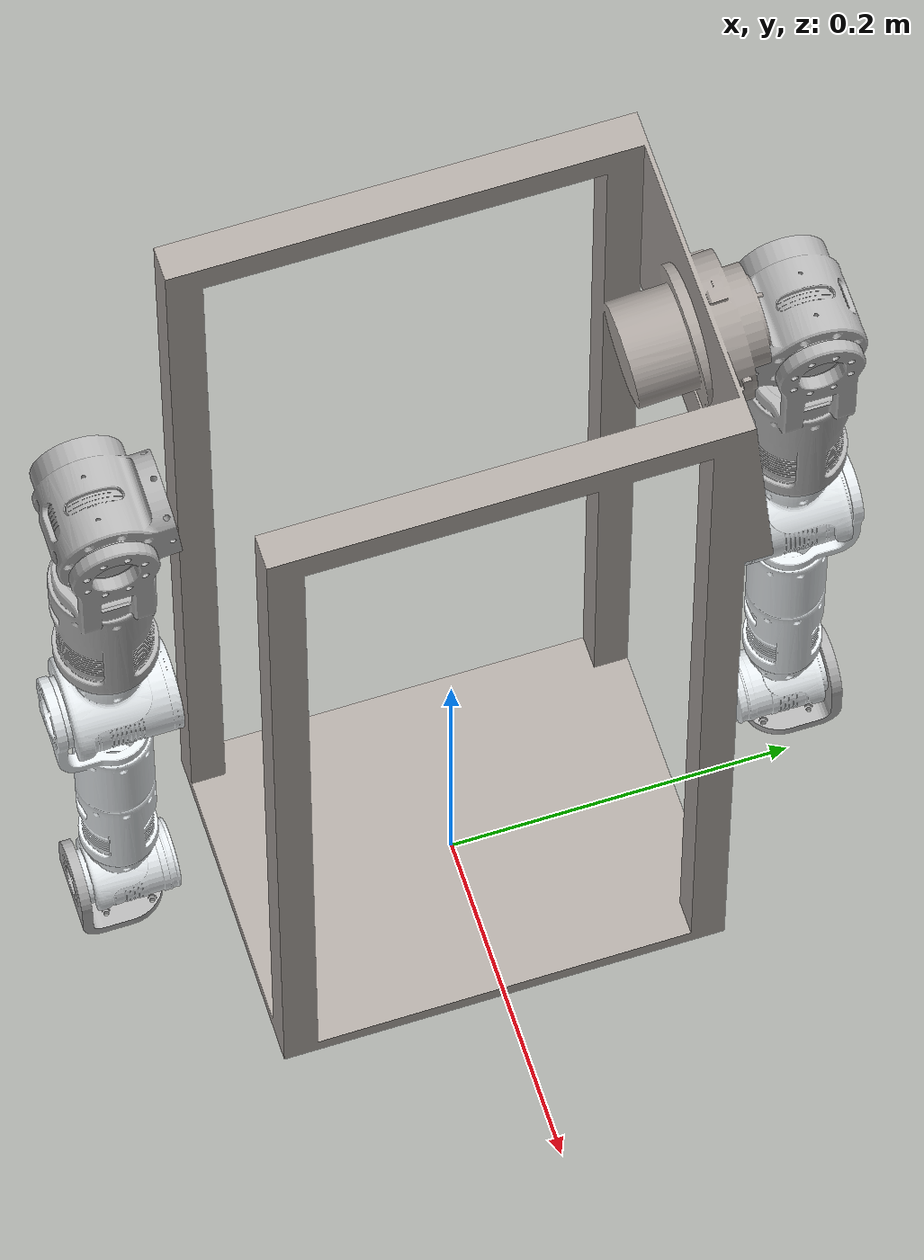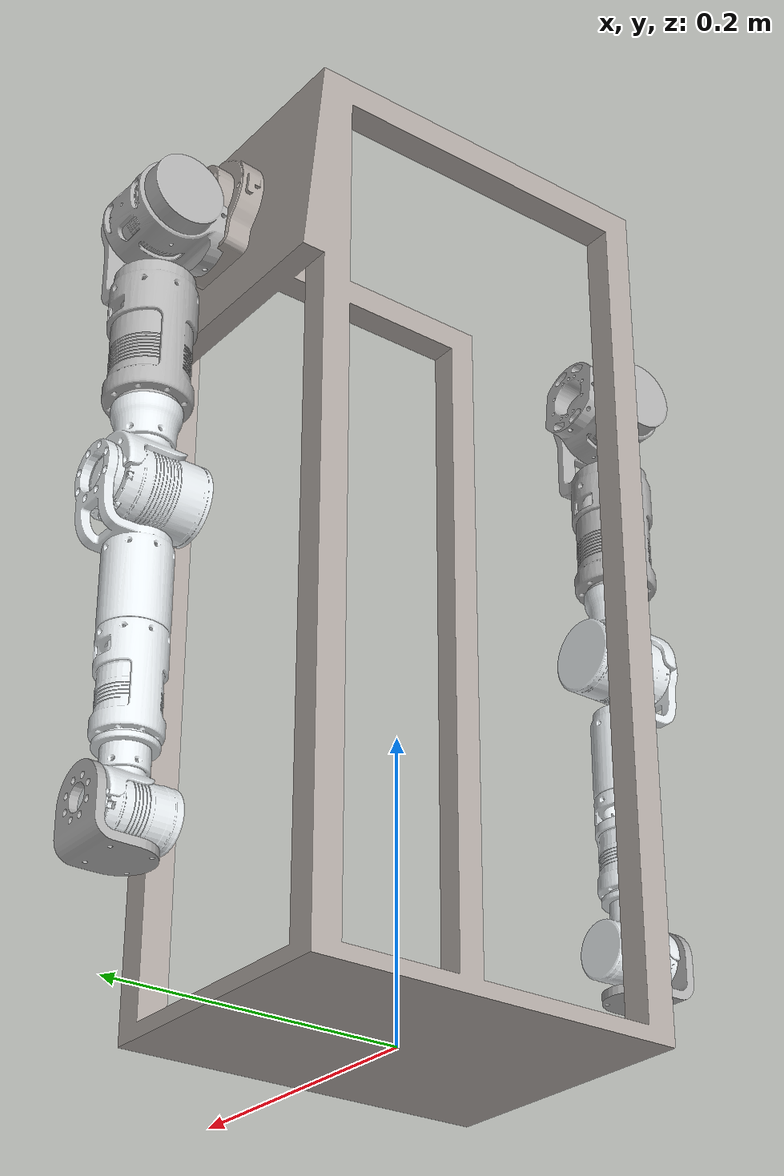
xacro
<?xml version="1.0"?>
<robot xmlns:xacro="http://www.ros.org/wiki/xacro" name="eyou_arm">
    <xacro:arg name="initial_positions_file" default="initial_positions.yaml" />

    <!-- Import eyou_arm urdf file -->
    <xacro:include filename="$(find eyou_ros2_control)/urdf/eyou_motor.urdf" />

    <!-- Import control_xacro -->
    <xacro:include filename="eyou_arm.ros2_control.xacro" />

    <xacro:eyou_arm_ros2_control name="FakeSystem" initial_positions_file="$(arg initial_positions_file)"/>

</robot>

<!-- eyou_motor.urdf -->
<robot
  name="eyou_arm">
  <link
    name="base_link">
    <inertial>
      <origin
        xyz="-1.11022302462516E-16 1.38777878078145E-16 0.469182869455848"
        rpy="0 0 0" />
      <mass
        value="4.58407761793697" />
      <inertia
        ixx="0.035026270933699"
        ixy="8.72490192900531E-11"
        ixz="-1.44759304418113E-18"
        iyy="0.0417863795649787"
        iyz="-7.29742718698457E-18"
        izz="0.011481351070146" />
    </inertial>
    <visual>
      <origin
        xyz="0 0 0"
        rpy="0 0 0" />
      <geometry>
        <mesh
          filename="package://eyou_description/meshes/base_link.STL" />
      </geometry>
      <material
        name="">
        <color
          rgba="0.686274509803922 0.658823529411765 0.63921568627451 1" />
      </material>
    </visual>
    <collision>
      <origin
        xyz="0 0 0"
        rpy="0 0 0" />
      <geometry>
        <mesh
          filename="package://eyou_description/meshes/base_link.STL" />
      </geometry>
    </collision>
  </link>
  <link
    name="link1">
    <inertial>
      <origin
        xyz="-0.00616208879294661 5.93612729388182E-08 0.0349460598059361"
        rpy="0 0 0" />
      <mass
        value="0.529497389335452" />
      <inertia
        ixx="0.000212324556474794"
        ixy="4.78501618110663E-10"
        ixz="-2.41724008448851E-06"
        iyy="0.000266190944788909"
        iyz="7.63896352721843E-11"
        izz="0.000255986765145615" />
    </inertial>
    <visual>
      <origin
        xyz="0 0 0"
        rpy="0 0 0" />
      <geometry>
        <mesh
          filename="package://eyou_description/meshes/link1.STL" />
      </geometry>
      <material
        name="">
        <color
          rgba="0.698039215686274 0.698039215686274 0.698039215686274 1" />
      </material>
    </visual>
    <collision>
      <origin
        xyz="0 0 0"
        rpy="0 0 0" />
      <geometry>
        <mesh
          filename="package://eyou_description/meshes/link1.STL" />
      </geometry>
    </collision>
  </link>
  <joint
    name="joint1"
    type="revolute">
    <origin
      xyz="0 0.15558 0.52181"
      rpy="-1.6606 0 0" />
    <parent
      link="base_link" />
    <child
      link="link1" />
    <axis
      xyz="0 0 1" />
    <limit
      lower="-3.14"
      upper="3.14"
      effort="10"
      velocity="10" />
  </joint>
  <link
    name="link2">
    <inertial>
      <origin
        xyz="-0.100980933411647 -5.28799155852244E-09 -0.0232813958693823"
        rpy="0 0 0" />
      <mass
        value="0.566804554005846" />
      <inertia
        ixx="0.000240973522730252"
        ixy="5.91194405737918E-12"
        ixz="-3.5179267638491E-05"
        iyy="0.000395824967050118"
        iyz="-4.82599101387467E-10"
        izz="0.000373860263464783" />
    </inertial>
    <visual>
      <origin
        xyz="0 0 0"
        rpy="0 0 0" />
      <geometry>
        <mesh
          filename="package://eyou_description/meshes/link2.STL" />
      </geometry>
      <material
        name="">
        <color
          rgba="0.698039215686274 0.698039215686274 0.698039215686274 1" />
      </material>
    </visual>
    <collision>
      <origin
        xyz="0 0 0"
        rpy="0 0 0" />
      <geometry>
        <mesh
          filename="package://eyou_description/meshes/link2.STL" />
      </geometry>
    </collision>
  </link>
  <joint
    name="joint2"
    type="revolute">
    <origin
      xyz="0.025999 0 0.0375"
      rpy="-1.5708 0.089758 -1.5708" />
    <parent
      link="link1" />
    <child
      link="link2" />
    <axis
      xyz="0 0 1" />
    <limit
      lower="-3.14"
      upper="3.14"
      effort="10"
      velocity="10" />
  </joint>
  <link
    name="link3">
    <inertial>
      <origin
        xyz="-3.26358497448886E-08 0.00357308588736699 0.0513274498338813"
        rpy="0 0 0" />
      <mass
        value="0.481708259704281" />
      <inertia
        ixx="0.000207537636321285"
        ixy="-3.50979044988331E-10"
        ixz="1.63534113028137E-10"
        iyy="0.00015599988287561"
        iyz="2.41690545773794E-06"
        izz="0.000219262186911974" />
    </inertial>
    <visual>
      <origin
        xyz="0 0 0"
        rpy="0 0 0" />
      <geometry>
        <mesh
          filename="package://eyou_description/meshes/link3.STL" />
      </geometry>
      <material
        name="">
        <color
          rgba="0.898039215686275 0.917647058823529 0.929411764705882 1" />
      </material>
    </visual>
    <collision>
      <origin
        xyz="0 0 0"
        rpy="0 0 0" />
      <geometry>
        <mesh
          filename="package://eyou_description/meshes/link3.STL" />
      </geometry>
    </collision>
  </link>
  <joint
    name="joint3"
    type="revolute">
    <origin
      xyz="-0.1505 0 -0.026"
      rpy="0 -1.5708 0" />
    <parent
      link="link2" />
    <child
      link="link3" />
    <axis
      xyz="0 0 1" />
    <limit
      lower="-3.14"
      upper="3.14"
      effort="10"
      velocity="10" />
  </joint>
  <link
    name="link4">
    <inertial>
      <origin
        xyz="3.57473034229283E-08 0.115010193588145 -0.0269265503493482"
        rpy="0 0 0" />
      <mass
        value="0.329838563871613" />
      <inertia
        ixx="0.00014817696579662"
        ixy="3.10151365528983E-10"
        ixz="6.92426965976863E-09"
        iyy="9.63331293352158E-05"
        iyz="1.11021931389748E-05"
        izz="0.000144485798243393" />
    </inertial>
    <visual>
      <origin
        xyz="0 0 0"
        rpy="0 0 0" />
      <geometry>
        <mesh
          filename="package://eyou_description/meshes/link4.STL" />
      </geometry>
      <material
        name="">
        <color
          rgba="0.898039215686275 0.917647058823529 0.929411764705882 1" />
      </material>
    </visual>
    <collision>
      <origin
        xyz="0 0 0"
        rpy="0 0 0" />
      <geometry>
        <mesh
          filename="package://eyou_description/meshes/link4.STL" />
      </geometry>
    </collision>
  </link>
  <joint
    name="joint4"
    type="revolute">
    <origin
      xyz="0 -0.028999 0.0575"
      rpy="1.5708 0 0" />
    <parent
      link="link3" />
    <child
      link="link4" />
    <axis
      xyz="0 0 1" />
    <limit
      lower="-3.14"
      upper="3.14"
      effort="10"
      velocity="10" />
  </joint>
  <link
    name="link5">
    <inertial>
      <origin
        xyz="1.66599088510799E-07 0.00406173056683598 0.0366311644711939"
        rpy="0 0 0" />
      <mass
        value="0.228601823800022" />
      <inertia
        ixx="6.25397849311352E-05"
        ixy="-4.33257152480105E-10"
        ixz="-7.78869976653566E-09"
        iyy="4.29204656172376E-05"
        iyz="5.29791859525774E-07"
        izz="6.5381418031852E-05" />
    </inertial>
    <visual>
      <origin
        xyz="0 0 0"
        rpy="0 0 0" />
      <geometry>
        <mesh
          filename="package://eyou_description/meshes/link5.STL" />
      </geometry>
      <material
        name="">
        <color
          rgba="0.898039215686275 0.917647058823529 0.929411764705882 1" />
      </material>
    </visual>
    <collision>
      <origin
        xyz="0 0 0"
        rpy="0 0 0" />
      <geometry>
        <mesh
          filename="package://eyou_description/meshes/link5.STL" />
      </geometry>
    </collision>
  </link>
  <joint
    name="joint5"
    type="revolute">
    <origin
      xyz="0 0.1708 -0.029"
      rpy="-1.5708 0 0" />
    <parent
      link="link4" />
    <child
      link="link5" />
    <axis
      xyz="0 0 1" />
    <limit
      lower="-3.14"
      upper="3.14"
      effort="10"
      velocity="10" />
  </joint>
  <link
    name="link6">
    <inertial>
      <origin
        xyz="1.29556088079852E-12 0.0163010424836187 -0.00947928557125444"
        rpy="0 0 0" />
      <mass
        value="0.0598755010407636" />
      <inertia
        ixx="2.60762300701253E-05"
        ixy="-1.44091435352681E-16"
        ixz="-3.14217235279124E-16"
        iyy="2.2700377312818E-05"
        iyz="7.94649714445054E-06"
        izz="2.2741529985641E-05" />
    </inertial>
    <visual>
      <origin
        xyz="0 0 0"
        rpy="0 0 0" />
      <geometry>
        <mesh
          filename="package://eyou_description/meshes/link6.STL" />
      </geometry>
      <material
        name="">
        <color
          rgba="0.698039215686274 0.698039215686274 0.698039215686274 1" />
      </material>
    </visual>
    <collision>
      <origin
        xyz="0 0 0"
        rpy="0 0 0" />
      <geometry>
        <mesh
          filename="package://eyou_description/meshes/link6.STL" />
      </geometry>
    </collision>
  </link>
  <joint
    name="joint6"
    type="revolute">
    <origin
      xyz="0 -0.0233 0.041"
      rpy="1.5708 0 0" />
    <parent
      link="link5" />
    <child
      link="link6" />
    <axis
      xyz="0 0 1" />
    <limit
      lower="-3.14"
      upper="3.14"
      effort="10"
      velocity="10" />
  </joint>
  <link
    name="link7">
    <inertial>
      <origin
        xyz="-0.00616208932690475 5.46574556448132E-08 0.0349460424190002"
        rpy="0 0 0" />
      <mass
        value="0.52949738018355" />
      <inertia
        ixx="0.000212324568733185"
        ixy="5.47569772954262E-10"
        ixz="-2.41704489808493E-06"
        iyy="0.000266190876951229"
        iyz="-1.12432350789801E-10"
        izz="0.000255986839862974" />
    </inertial>
    <visual>
      <origin
        xyz="0 0 0"
        rpy="0 0 0" />
      <geometry>
        <mesh
          filename="package://eyou_description/meshes/link7.STL" />
      </geometry>
      <material
        name="">
        <color
          rgba="0.698039215686274 0.698039215686274 0.698039215686274 1" />
      </material>
    </visual>
    <collision>
      <origin
        xyz="0 0 0"
        rpy="0 0 0" />
      <geometry>
        <mesh
          filename="package://eyou_description/meshes/link7.STL" />
      </geometry>
    </collision>
  </link>
  <joint
    name="joint7"
    type="revolute">
    <origin
      xyz="0 -0.15558 0.52181"
      rpy="1.6606 0 0" />
    <parent
      link="base_link" />
    <child
      link="link7" />
    <axis
      xyz="0 0 1" />
    <limit
      lower="-3.14"
      upper="3.14"
      effort="10"
      velocity="10" />
  </joint>
  <link
    name="link8">
    <inertial>
      <origin
        xyz="-0.100980934163438 4.33082963935405E-09 -0.0232814951400653"
        rpy="0 0 0" />
      <mass
        value="0.566804545811446" />
      <inertia
        ixx="0.00024097353024685"
        ixy="1.13923769150559E-10"
        ixz="-3.5177626076926E-05"
        iyy="0.000395797645934751"
        iyz="-3.58005649274391E-10"
        izz="0.000373887590493816" />
    </inertial>
    <visual>
      <origin
        xyz="0 0 0"
        rpy="0 0 0" />
      <geometry>
        <mesh
          filename="package://eyou_description/meshes/link8.STL" />
      </geometry>
      <material
        name="">
        <color
          rgba="0.698039215686274 0.698039215686274 0.698039215686274 1" />
      </material>
    </visual>
    <collision>
      <origin
        xyz="0 0 0"
        rpy="0 0 0" />
      <geometry>
        <mesh
          filename="package://eyou_description/meshes/link8.STL" />
      </geometry>
    </collision>
  </link>
  <joint
    name="joint8"
    type="revolute">
    <origin
      xyz="0.025999 0 0.0375"
      rpy="1.5708 0.089758 1.5708" />
    <parent
      link="link7" />
    <child
      link="link8" />
    <axis
      xyz="0 0 1" />
    <limit
      lower="-3.14"
      upper="3.14"
      effort="10"
      velocity="10" />
  </joint>
  <link
    name="link9">
    <inertial>
      <origin
        xyz="3.26382594145747E-08 -0.0035730858875701 0.0513274498338843"
        rpy="0 0 0" />
      <mass
        value="0.48170825970428" />
      <inertia
        ixx="0.000207537625099252"
        ixy="-3.78466862788424E-10"
        ixz="-1.63597456985926E-10"
        iyy="0.000155999894097639"
        iyz="-2.41690541955742E-06"
        izz="0.000219262186911973" />
    </inertial>
    <visual>
      <origin
        xyz="0 0 0"
        rpy="0 0 0" />
      <geometry>
        <mesh
          filename="package://eyou_description/meshes/link9.STL" />
      </geometry>
      <material
        name="">
        <color
          rgba="0.898039215686275 0.917647058823529 0.929411764705882 1" />
      </material>
    </visual>
    <collision>
      <origin
        xyz="0 0 0"
        rpy="0 0 0" />
      <geometry>
        <mesh
          filename="package://eyou_description/meshes/link9.STL" />
      </geometry>
    </collision>
  </link>
  <joint
    name="joint9"
    type="revolute">
    <origin
      xyz="-0.1505 0 -0.026"
      rpy="0 -1.5708 0" />
    <parent
      link="link8" />
    <child
      link="link9" />
    <axis
      xyz="0 0 1" />
    <limit
      lower="-3.14"
      upper="3.14"
      effort="10"
      velocity="10" />
  </joint>
  <link
    name="link10">
    <inertial>
      <origin
        xyz="-3.91745892669437E-08 -0.115010189192398 -0.0269265443738384"
        rpy="0 0 0" />
      <mass
        value="0.329838528226449" />
      <inertia
        ixx="0.000148170835528593"
        ixy="2.89204013419824E-10"
        ixz="2.08236955086559E-09"
        iyy="9.6333123506679E-05"
        iyz="-1.11021784956733E-05"
        izz="0.000144491896112938" />
    </inertial>
    <visual>
      <origin
        xyz="0 0 0"
        rpy="0 0 0" />
      <geometry>
        <mesh
          filename="package://eyou_description/meshes/link10.STL" />
      </geometry>
      <material
        name="">
        <color
          rgba="0.898039215686275 0.917647058823529 0.929411764705882 1" />
      </material>
    </visual>
    <collision>
      <origin
        xyz="0 0 0"
        rpy="0 0 0" />
      <geometry>
        <mesh
          filename="package://eyou_description/meshes/link10.STL" />
      </geometry>
    </collision>
  </link>
  <joint
    name="joint10"
    type="revolute">
    <origin
      xyz="0 0.028999 0.0575"
      rpy="-1.5708 0 0" />
    <parent
      link="link9" />
    <child
      link="link10" />
    <axis
      xyz="0 0 1" />
    <limit
      lower="-3.14"
      upper="3.14"
      effort="10"
      velocity="10" />
  </joint>
  <link
    name="link11">
    <inertial>
      <origin
        xyz="-1.61780980056925E-07 -0.00406173069318472 0.0366311724726395"
        rpy="0 0 0" />
      <mass
        value="0.228601822256755" />
      <inertia
        ixx="6.25336693092091E-05"
        ixy="-4.53352837048476E-10"
        ixz="-1.2167177119533E-09"
        iyy="4.29204632434536E-05"
        iyz="-5.29806897390379E-07"
        izz="6.53875309664482E-05" />
    </inertial>
    <visual>
      <origin
        xyz="0 0 0"
        rpy="0 0 0" />
      <geometry>
        <mesh
          filename="package://eyou_description/meshes/link11.STL" />
      </geometry>
      <material
        name="">
        <color
          rgba="0.898039215686275 0.917647058823529 0.929411764705882 1" />
      </material>
    </visual>
    <collision>
      <origin
        xyz="0 0 0"
        rpy="0 0 0" />
      <geometry>
        <mesh
          filename="package://eyou_description/meshes/link11.STL" />
      </geometry>
    </collision>
  </link>
  <joint
    name="joint11"
    type="revolute">
    <origin
      xyz="0 -0.1708 -0.029"
      rpy="1.5708 0 0" />
    <parent
      link="link10" />
    <child
      link="link11" />
    <axis
      xyz="0 0 1" />
    <limit
      lower="-3.14"
      upper="3.14"
      effort="10"
      velocity="10" />
  </joint>
  <link
    name="link12">
    <inertial>
      <origin
        xyz="-1.49094625534474E-12 -0.0163010424835384 -0.00947928557138822"
        rpy="0 0 0" />
      <mass
        value="0.0598755010407634" />
      <inertia
        ixx="2.60762300701254E-05"
        ixy="-3.01592697835458E-16"
        ixz="2.48143500673228E-16"
        iyy="2.27003773129485E-05"
        iyz="-7.94649714445088E-06"
        izz="2.27415299855105E-05" />
    </inertial>
    <visual>
      <origin
        xyz="0 0 0"
        rpy="0 0 0" />
      <geometry>
        <mesh
          filename="package://eyou_description/meshes/link12.STL" />
      </geometry>
      <material
        name="">
        <color
          rgba="0.698039215686274 0.698039215686274 0.698039215686274 1" />
      </material>
    </visual>
    <collision>
      <origin
        xyz="0 0 0"
        rpy="0 0 0" />
      <geometry>
        <mesh
          filename="package://eyou_description/meshes/link12.STL" />
      </geometry>
    </collision>
  </link>
  <joint
    name="joint12"
    type="revolute">
    <origin
      xyz="0 0.0233 0.041"
      rpy="-1.5708 0 0" />
    <parent
      link="link11" />
    <child
      link="link12" />
    <axis
      xyz="0 0 1" />
    <limit
      lower="-3.14"
      upper="3.14"
      effort="10"
      velocity="10" />
  </joint>
  <!-- ros2_control 硬件配置块，纯URDF无需xacro标签 -->
  <ros2_control name="eyou_hardware" type="system">
    <hardware>
      <plugin>eyou_ros2_control/EyouSystem</plugin>
    </hardware>
    <joint name="joint1">
      <command_interface name="position"/>
      <state_interface name="position"/>
    </joint>
    <joint name="joint2">
      <command_interface name="position"/>
      <state_interface name="position"/>
    </joint>
    <joint name="joint3">
      <command_interface name="position"/>
      <state_interface name="position"/>
    </joint>
    <joint name="joint4">
      <command_interface name="position"/>
      <state_interface name="position"/>
    </joint>
    <joint name="joint5">
      <command_interface name="position"/>
      <state_interface name="position"/>
    </joint>
    <joint name="joint6">
      <command_interface name="position"/>
      <state_interface name="position"/>
    </joint>
    <joint name="joint7">
      <command_interface name="position"/>
      <state_interface name="position"/>
    </joint>
    <joint name="joint8">
      <command_interface name="position"/>
      <state_interface name="position"/>
    </joint>
    <joint name="joint9">
      <command_interface name="position"/>
      <state_interface name="position"/>
    </joint>
    <joint name="joint10">
      <command_interface name="position"/>
      <state_interface name="position"/>
    </joint>
    <joint name="joint11">
      <command_interface name="position"/>
      <state_interface name="position"/>
    </joint>
    <joint name="joint12">
      <command_interface name="position"/>
      <state_interface name="position"/>
    </joint>
  </ros2_control>
</robot>
